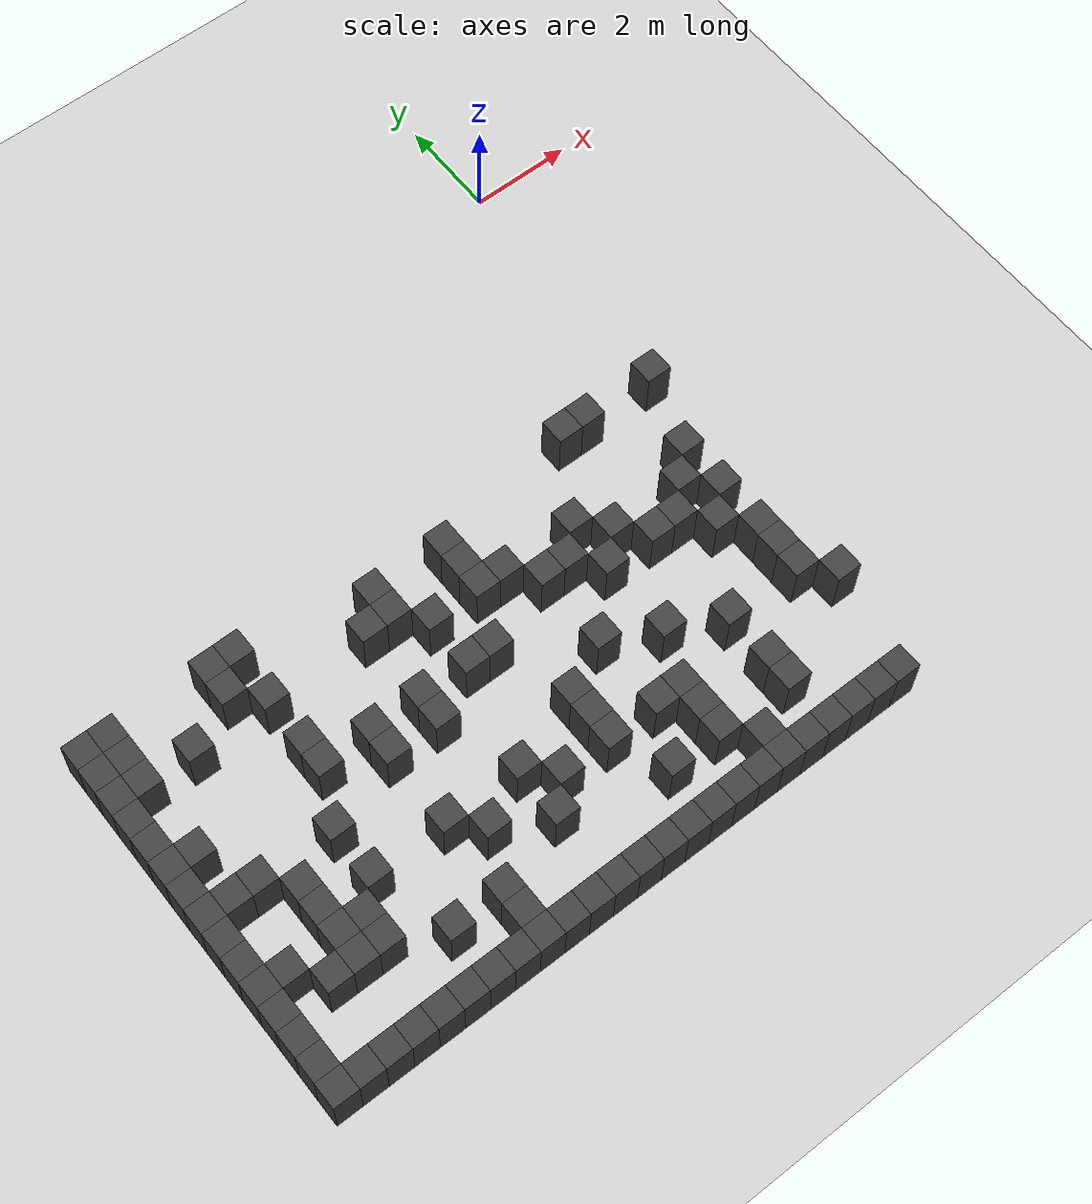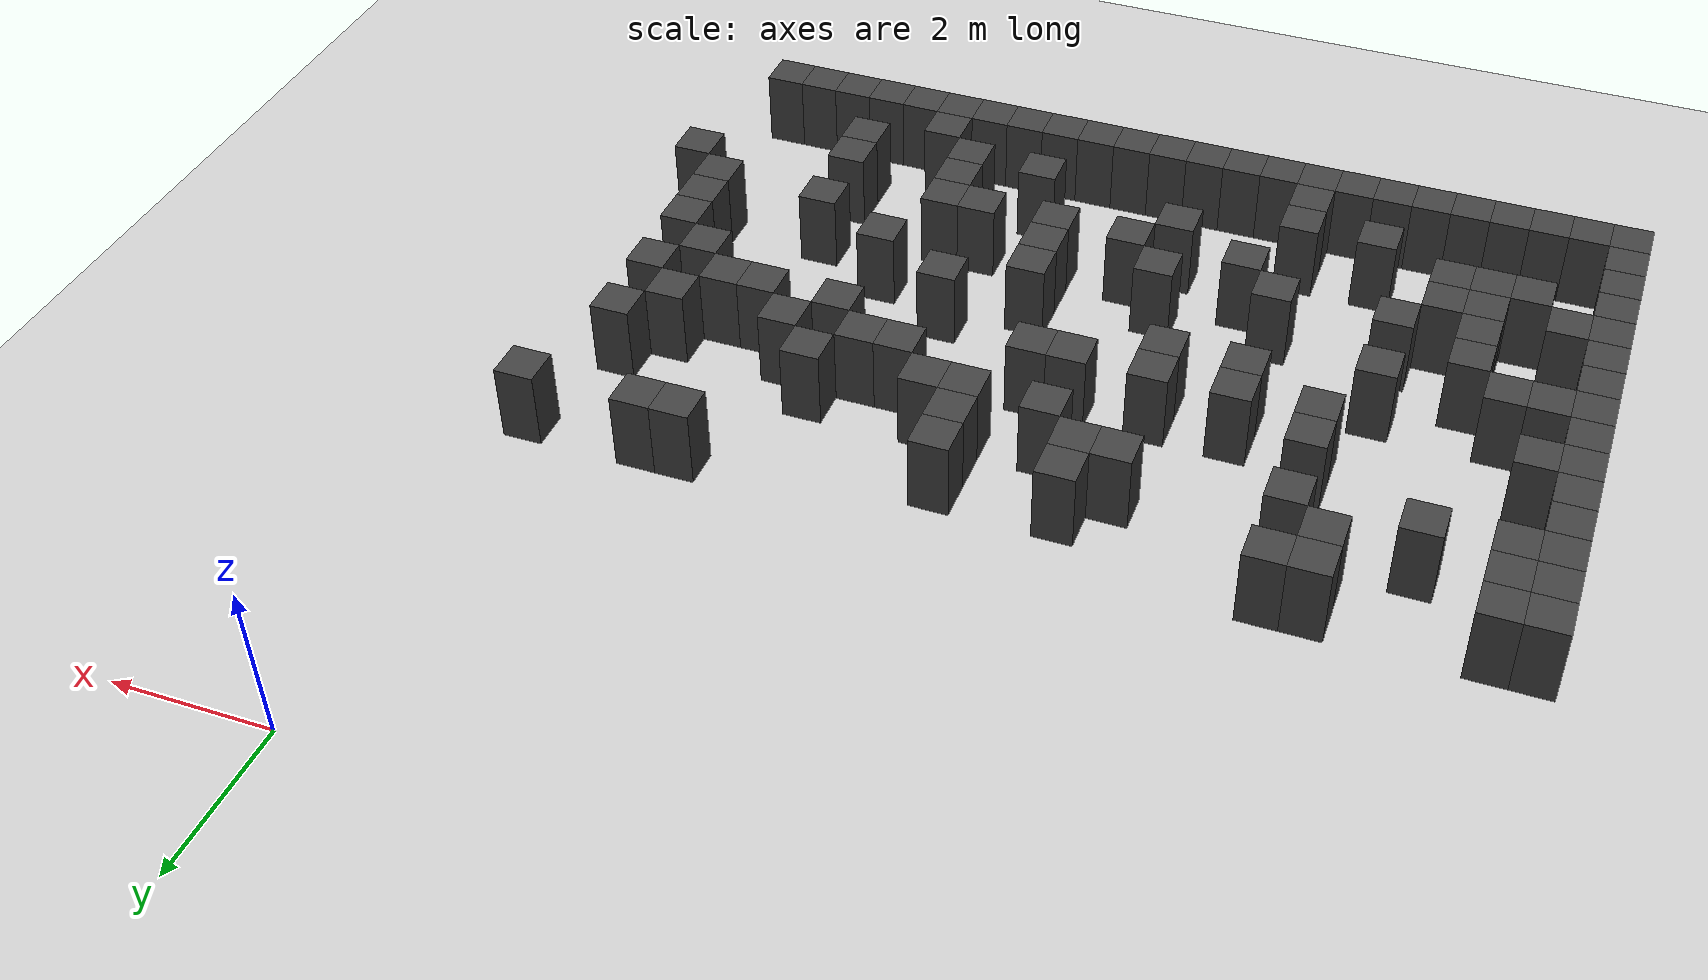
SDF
<sdf version="1.7">
 <world name="map_4492">
  <model name="ground_plane">
   <static>true</static>
   <link name="link">
    <collision name="collision">
     <geometry><plane><normal>0 0 1</normal><size>200 200</size></plane></geometry>
    </collision>
    <visual name="visual">
     <geometry><plane><normal>0 0 1</normal><size>200 200</size></plane></geometry>
     <material><ambient>0.8 0.8 0.8 1</ambient><diffuse>0.8 0.8 0.8 1</diffuse></material>
    </visual>
   </link>
  </model>
  <model name="maze_environment">
   <static>true</static>
   <link name="wall_452">
    <pose>-12.250 -5.250 0.500 0 0 0</pose>
    <collision name="col"><geometry><box><size>0.5 0.5 1.0</size></box></geometry></collision>
    <visual name="vis">
     <geometry><box><size>0.5 0.5 1.0</size></box></geometry>
     <material><ambient>0.15 0.15 0.15 1</ambient><diffuse>0.25 0.25 0.25 1</diffuse></material>
    </visual>
   </link>
   <link name="wall_453">
    <pose>-11.750 -5.250 0.500 0 0 0</pose>
    <collision name="col"><geometry><box><size>0.5 0.5 1.0</size></box></geometry></collision>
    <visual name="vis">
     <geometry><box><size>0.5 0.5 1.0</size></box></geometry>
     <material><ambient>0.15 0.15 0.15 1</ambient><diffuse>0.25 0.25 0.25 1</diffuse></material>
    </visual>
   </link>
   <link name="wall_454">
    <pose>-9.750 -5.250 0.500 0 0 0</pose>
    <collision name="col"><geometry><box><size>0.5 0.5 1.0</size></box></geometry></collision>
    <visual name="vis">
     <geometry><box><size>0.5 0.5 1.0</size></box></geometry>
     <material><ambient>0.15 0.15 0.15 1</ambient><diffuse>0.25 0.25 0.25 1</diffuse></material>
    </visual>
   </link>
   <link name="wall_455">
    <pose>-9.250 -5.250 0.500 0 0 0</pose>
    <collision name="col"><geometry><box><size>0.5 0.5 1.0</size></box></geometry></collision>
    <visual name="vis">
     <geometry><box><size>0.5 0.5 1.0</size></box></geometry>
     <material><ambient>0.15 0.15 0.15 1</ambient><diffuse>0.25 0.25 0.25 1</diffuse></material>
    </visual>
   </link>
   <link name="wall_456">
    <pose>-2.250 -5.250 0.500 0 0 0</pose>
    <collision name="col"><geometry><box><size>0.5 0.5 1.0</size></box></geometry></collision>
    <visual name="vis">
     <geometry><box><size>0.5 0.5 1.0</size></box></geometry>
     <material><ambient>0.15 0.15 0.15 1</ambient><diffuse>0.25 0.25 0.25 1</diffuse></material>
    </visual>
   </link>
   <link name="wall_457">
    <pose>-1.750 -5.250 0.500 0 0 0</pose>
    <collision name="col"><geometry><box><size>0.5 0.5 1.0</size></box></geometry></collision>
    <visual name="vis">
     <geometry><box><size>0.5 0.5 1.0</size></box></geometry>
     <material><ambient>0.15 0.15 0.15 1</ambient><diffuse>0.25 0.25 0.25 1</diffuse></material>
    </visual>
   </link>
   <link name="wall_458">
    <pose>-0.250 -5.250 0.500 0 0 0</pose>
    <collision name="col"><geometry><box><size>0.5 0.5 1.0</size></box></geometry></collision>
    <visual name="vis">
     <geometry><box><size>0.5 0.5 1.0</size></box></geometry>
     <material><ambient>0.15 0.15 0.15 1</ambient><diffuse>0.25 0.25 0.25 1</diffuse></material>
    </visual>
   </link>
   <link name="wall_463">
    <pose>-12.250 -5.750 0.500 0 0 0</pose>
    <collision name="col"><geometry><box><size>0.5 0.5 1.0</size></box></geometry></collision>
    <visual name="vis">
     <geometry><box><size>0.5 0.5 1.0</size></box></geometry>
     <material><ambient>0.15 0.15 0.15 1</ambient><diffuse>0.25 0.25 0.25 1</diffuse></material>
    </visual>
   </link>
   <link name="wall_464">
    <pose>-11.750 -5.750 0.500 0 0 0</pose>
    <collision name="col"><geometry><box><size>0.5 0.5 1.0</size></box></geometry></collision>
    <visual name="vis">
     <geometry><box><size>0.5 0.5 1.0</size></box></geometry>
     <material><ambient>0.15 0.15 0.15 1</ambient><diffuse>0.25 0.25 0.25 1</diffuse></material>
    </visual>
   </link>
   <link name="wall_465">
    <pose>-9.750 -5.750 0.500 0 0 0</pose>
    <collision name="col"><geometry><box><size>0.5 0.5 1.0</size></box></geometry></collision>
    <visual name="vis">
     <geometry><box><size>0.5 0.5 1.0</size></box></geometry>
     <material><ambient>0.15 0.15 0.15 1</ambient><diffuse>0.25 0.25 0.25 1</diffuse></material>
    </visual>
   </link>
   <link name="wall_466">
    <pose>-6.750 -5.750 0.500 0 0 0</pose>
    <collision name="col"><geometry><box><size>0.5 0.5 1.0</size></box></geometry></collision>
    <visual name="vis">
     <geometry><box><size>0.5 0.5 1.0</size></box></geometry>
     <material><ambient>0.15 0.15 0.15 1</ambient><diffuse>0.25 0.25 0.25 1</diffuse></material>
    </visual>
   </link>
   <link name="wall_467">
    <pose>-5.250 -5.750 0.500 0 0 0</pose>
    <collision name="col"><geometry><box><size>0.5 0.5 1.0</size></box></geometry></collision>
    <visual name="vis">
     <geometry><box><size>0.5 0.5 1.0</size></box></geometry>
     <material><ambient>0.15 0.15 0.15 1</ambient><diffuse>0.25 0.25 0.25 1</diffuse></material>
    </visual>
   </link>
   <link name="wall_472">
    <pose>-12.250 -6.250 0.500 0 0 0</pose>
    <collision name="col"><geometry><box><size>0.5 0.5 1.0</size></box></geometry></collision>
    <visual name="vis">
     <geometry><box><size>0.5 0.5 1.0</size></box></geometry>
     <material><ambient>0.15 0.15 0.15 1</ambient><diffuse>0.25 0.25 0.25 1</diffuse></material>
    </visual>
   </link>
   <link name="wall_473">
    <pose>-11.750 -6.250 0.500 0 0 0</pose>
    <collision name="col"><geometry><box><size>0.5 0.5 1.0</size></box></geometry></collision>
    <visual name="vis">
     <geometry><box><size>0.5 0.5 1.0</size></box></geometry>
     <material><ambient>0.15 0.15 0.15 1</ambient><diffuse>0.25 0.25 0.25 1</diffuse></material>
    </visual>
   </link>
   <link name="wall_474">
    <pose>-10.750 -6.250 0.500 0 0 0</pose>
    <collision name="col"><geometry><box><size>0.5 0.5 1.0</size></box></geometry></collision>
    <visual name="vis">
     <geometry><box><size>0.5 0.5 1.0</size></box></geometry>
     <material><ambient>0.15 0.15 0.15 1</ambient><diffuse>0.25 0.25 0.25 1</diffuse></material>
    </visual>
   </link>
   <link name="wall_475">
    <pose>-9.250 -6.250 0.500 0 0 0</pose>
    <collision name="col"><geometry><box><size>0.5 0.5 1.0</size></box></geometry></collision>
    <visual name="vis">
     <geometry><box><size>0.5 0.5 1.0</size></box></geometry>
     <material><ambient>0.15 0.15 0.15 1</ambient><diffuse>0.25 0.25 0.25 1</diffuse></material>
    </visual>
   </link>
   <link name="wall_476">
    <pose>-7.250 -6.250 0.500 0 0 0</pose>
    <collision name="col"><geometry><box><size>0.5 0.5 1.0</size></box></geometry></collision>
    <visual name="vis">
     <geometry><box><size>0.5 0.5 1.0</size></box></geometry>
     <material><ambient>0.15 0.15 0.15 1</ambient><diffuse>0.25 0.25 0.25 1</diffuse></material>
    </visual>
   </link>
   <link name="wall_477">
    <pose>-6.750 -6.250 0.500 0 0 0</pose>
    <collision name="col"><geometry><box><size>0.5 0.5 1.0</size></box></geometry></collision>
    <visual name="vis">
     <geometry><box><size>0.5 0.5 1.0</size></box></geometry>
     <material><ambient>0.15 0.15 0.15 1</ambient><diffuse>0.25 0.25 0.25 1</diffuse></material>
    </visual>
   </link>
   <link name="wall_478">
    <pose>-5.250 -6.250 0.500 0 0 0</pose>
    <collision name="col"><geometry><box><size>0.5 0.5 1.0</size></box></geometry></collision>
    <visual name="vis">
     <geometry><box><size>0.5 0.5 1.0</size></box></geometry>
     <material><ambient>0.15 0.15 0.15 1</ambient><diffuse>0.25 0.25 0.25 1</diffuse></material>
    </visual>
   </link>
   <link name="wall_483">
    <pose>-12.250 -6.750 0.500 0 0 0</pose>
    <collision name="col"><geometry><box><size>0.5 0.5 1.0</size></box></geometry></collision>
    <visual name="vis">
     <geometry><box><size>0.5 0.5 1.0</size></box></geometry>
     <material><ambient>0.15 0.15 0.15 1</ambient><diffuse>0.25 0.25 0.25 1</diffuse></material>
    </visual>
   </link>
   <link name="wall_484">
    <pose>-6.250 -6.750 0.500 0 0 0</pose>
    <collision name="col"><geometry><box><size>0.5 0.5 1.0</size></box></geometry></collision>
    <visual name="vis">
     <geometry><box><size>0.5 0.5 1.0</size></box></geometry>
     <material><ambient>0.15 0.15 0.15 1</ambient><diffuse>0.25 0.25 0.25 1</diffuse></material>
    </visual>
   </link>
   <link name="wall_485">
    <pose>-5.250 -6.750 0.500 0 0 0</pose>
    <collision name="col"><geometry><box><size>0.5 0.5 1.0</size></box></geometry></collision>
    <visual name="vis">
     <geometry><box><size>0.5 0.5 1.0</size></box></geometry>
     <material><ambient>0.15 0.15 0.15 1</ambient><diffuse>0.25 0.25 0.25 1</diffuse></material>
    </visual>
   </link>
   <link name="wall_486">
    <pose>-4.750 -6.750 0.500 0 0 0</pose>
    <collision name="col"><geometry><box><size>0.5 0.5 1.0</size></box></geometry></collision>
    <visual name="vis">
     <geometry><box><size>0.5 0.5 1.0</size></box></geometry>
     <material><ambient>0.15 0.15 0.15 1</ambient><diffuse>0.25 0.25 0.25 1</diffuse></material>
    </visual>
   </link>
   <link name="wall_487">
    <pose>-3.250 -6.750 0.500 0 0 0</pose>
    <collision name="col"><geometry><box><size>0.5 0.5 1.0</size></box></geometry></collision>
    <visual name="vis">
     <geometry><box><size>0.5 0.5 1.0</size></box></geometry>
     <material><ambient>0.15 0.15 0.15 1</ambient><diffuse>0.25 0.25 0.25 1</diffuse></material>
    </visual>
   </link>
   <link name="wall_488">
    <pose>-0.750 -6.750 0.500 0 0 0</pose>
    <collision name="col"><geometry><box><size>0.5 0.5 1.0</size></box></geometry></collision>
    <visual name="vis">
     <geometry><box><size>0.5 0.5 1.0</size></box></geometry>
     <material><ambient>0.15 0.15 0.15 1</ambient><diffuse>0.25 0.25 0.25 1</diffuse></material>
    </visual>
   </link>
   <link name="wall_496">
    <pose>-12.250 -7.250 0.500 0 0 0</pose>
    <collision name="col"><geometry><box><size>0.5 0.5 1.0</size></box></geometry></collision>
    <visual name="vis">
     <geometry><box><size>0.5 0.5 1.0</size></box></geometry>
     <material><ambient>0.15 0.15 0.15 1</ambient><diffuse>0.25 0.25 0.25 1</diffuse></material>
    </visual>
   </link>
   <link name="wall_497">
    <pose>-9.250 -7.250 0.500 0 0 0</pose>
    <collision name="col"><geometry><box><size>0.5 0.5 1.0</size></box></geometry></collision>
    <visual name="vis">
     <geometry><box><size>0.5 0.5 1.0</size></box></geometry>
     <material><ambient>0.15 0.15 0.15 1</ambient><diffuse>0.25 0.25 0.25 1</diffuse></material>
    </visual>
   </link>
   <link name="wall_498">
    <pose>-4.250 -7.250 0.500 0 0 0</pose>
    <collision name="col"><geometry><box><size>0.5 0.5 1.0</size></box></geometry></collision>
    <visual name="vis">
     <geometry><box><size>0.5 0.5 1.0</size></box></geometry>
     <material><ambient>0.15 0.15 0.15 1</ambient><diffuse>0.25 0.25 0.25 1</diffuse></material>
    </visual>
   </link>
   <link name="wall_499">
    <pose>-3.750 -7.250 0.500 0 0 0</pose>
    <collision name="col"><geometry><box><size>0.5 0.5 1.0</size></box></geometry></collision>
    <visual name="vis">
     <geometry><box><size>0.5 0.5 1.0</size></box></geometry>
     <material><ambient>0.15 0.15 0.15 1</ambient><diffuse>0.25 0.25 0.25 1</diffuse></material>
    </visual>
   </link>
   <link name="wall_500">
    <pose>-2.750 -7.250 0.500 0 0 0</pose>
    <collision name="col"><geometry><box><size>0.5 0.5 1.0</size></box></geometry></collision>
    <visual name="vis">
     <geometry><box><size>0.5 0.5 1.0</size></box></geometry>
     <material><ambient>0.15 0.15 0.15 1</ambient><diffuse>0.25 0.25 0.25 1</diffuse></material>
    </visual>
   </link>
   <link name="wall_501">
    <pose>-1.250 -7.250 0.500 0 0 0</pose>
    <collision name="col"><geometry><box><size>0.5 0.5 1.0</size></box></geometry></collision>
    <visual name="vis">
     <geometry><box><size>0.5 0.5 1.0</size></box></geometry>
     <material><ambient>0.15 0.15 0.15 1</ambient><diffuse>0.25 0.25 0.25 1</diffuse></material>
    </visual>
   </link>
   <link name="wall_510">
    <pose>-12.250 -7.750 0.500 0 0 0</pose>
    <collision name="col"><geometry><box><size>0.5 0.5 1.0</size></box></geometry></collision>
    <visual name="vis">
     <geometry><box><size>0.5 0.5 1.0</size></box></geometry>
     <material><ambient>0.15 0.15 0.15 1</ambient><diffuse>0.25 0.25 0.25 1</diffuse></material>
    </visual>
   </link>
   <link name="wall_511">
    <pose>-11.750 -7.750 0.500 0 0 0</pose>
    <collision name="col"><geometry><box><size>0.5 0.5 1.0</size></box></geometry></collision>
    <visual name="vis">
     <geometry><box><size>0.5 0.5 1.0</size></box></geometry>
     <material><ambient>0.15 0.15 0.15 1</ambient><diffuse>0.25 0.25 0.25 1</diffuse></material>
    </visual>
   </link>
   <link name="wall_512">
    <pose>-9.250 -7.750 0.500 0 0 0</pose>
    <collision name="col"><geometry><box><size>0.5 0.5 1.0</size></box></geometry></collision>
    <visual name="vis">
     <geometry><box><size>0.5 0.5 1.0</size></box></geometry>
     <material><ambient>0.15 0.15 0.15 1</ambient><diffuse>0.25 0.25 0.25 1</diffuse></material>
    </visual>
   </link>
   <link name="wall_513">
    <pose>-8.250 -7.750 0.500 0 0 0</pose>
    <collision name="col"><geometry><box><size>0.5 0.5 1.0</size></box></geometry></collision>
    <visual name="vis">
     <geometry><box><size>0.5 0.5 1.0</size></box></geometry>
     <material><ambient>0.15 0.15 0.15 1</ambient><diffuse>0.25 0.25 0.25 1</diffuse></material>
    </visual>
   </link>
   <link name="wall_514">
    <pose>-7.250 -7.750 0.500 0 0 0</pose>
    <collision name="col"><geometry><box><size>0.5 0.5 1.0</size></box></geometry></collision>
    <visual name="vis">
     <geometry><box><size>0.5 0.5 1.0</size></box></geometry>
     <material><ambient>0.15 0.15 0.15 1</ambient><diffuse>0.25 0.25 0.25 1</diffuse></material>
    </visual>
   </link>
   <link name="wall_515">
    <pose>-6.250 -7.750 0.500 0 0 0</pose>
    <collision name="col"><geometry><box><size>0.5 0.5 1.0</size></box></geometry></collision>
    <visual name="vis">
     <geometry><box><size>0.5 0.5 1.0</size></box></geometry>
     <material><ambient>0.15 0.15 0.15 1</ambient><diffuse>0.25 0.25 0.25 1</diffuse></material>
    </visual>
   </link>
   <link name="wall_516">
    <pose>-5.750 -7.750 0.500 0 0 0</pose>
    <collision name="col"><geometry><box><size>0.5 0.5 1.0</size></box></geometry></collision>
    <visual name="vis">
     <geometry><box><size>0.5 0.5 1.0</size></box></geometry>
     <material><ambient>0.15 0.15 0.15 1</ambient><diffuse>0.25 0.25 0.25 1</diffuse></material>
    </visual>
   </link>
   <link name="wall_517">
    <pose>-3.250 -7.750 0.500 0 0 0</pose>
    <collision name="col"><geometry><box><size>0.5 0.5 1.0</size></box></geometry></collision>
    <visual name="vis">
     <geometry><box><size>0.5 0.5 1.0</size></box></geometry>
     <material><ambient>0.15 0.15 0.15 1</ambient><diffuse>0.25 0.25 0.25 1</diffuse></material>
    </visual>
   </link>
   <link name="wall_518">
    <pose>-2.250 -7.750 0.500 0 0 0</pose>
    <collision name="col"><geometry><box><size>0.5 0.5 1.0</size></box></geometry></collision>
    <visual name="vis">
     <geometry><box><size>0.5 0.5 1.0</size></box></geometry>
     <material><ambient>0.15 0.15 0.15 1</ambient><diffuse>0.25 0.25 0.25 1</diffuse></material>
    </visual>
   </link>
   <link name="wall_519">
    <pose>-1.750 -7.750 0.500 0 0 0</pose>
    <collision name="col"><geometry><box><size>0.5 0.5 1.0</size></box></geometry></collision>
    <visual name="vis">
     <geometry><box><size>0.5 0.5 1.0</size></box></geometry>
     <material><ambient>0.15 0.15 0.15 1</ambient><diffuse>0.25 0.25 0.25 1</diffuse></material>
    </visual>
   </link>
   <link name="wall_520">
    <pose>-0.750 -7.750 0.500 0 0 0</pose>
    <collision name="col"><geometry><box><size>0.5 0.5 1.0</size></box></geometry></collision>
    <visual name="vis">
     <geometry><box><size>0.5 0.5 1.0</size></box></geometry>
     <material><ambient>0.15 0.15 0.15 1</ambient><diffuse>0.25 0.25 0.25 1</diffuse></material>
    </visual>
   </link>
   <link name="wall_531">
    <pose>-12.250 -8.250 0.500 0 0 0</pose>
    <collision name="col"><geometry><box><size>0.5 0.5 1.0</size></box></geometry></collision>
    <visual name="vis">
     <geometry><box><size>0.5 0.5 1.0</size></box></geometry>
     <material><ambient>0.15 0.15 0.15 1</ambient><diffuse>0.25 0.25 0.25 1</diffuse></material>
    </visual>
   </link>
   <link name="wall_532">
    <pose>-8.250 -8.250 0.500 0 0 0</pose>
    <collision name="col"><geometry><box><size>0.5 0.5 1.0</size></box></geometry></collision>
    <visual name="vis">
     <geometry><box><size>0.5 0.5 1.0</size></box></geometry>
     <material><ambient>0.15 0.15 0.15 1</ambient><diffuse>0.25 0.25 0.25 1</diffuse></material>
    </visual>
   </link>
   <link name="wall_533">
    <pose>-7.250 -8.250 0.500 0 0 0</pose>
    <collision name="col"><geometry><box><size>0.5 0.5 1.0</size></box></geometry></collision>
    <visual name="vis">
     <geometry><box><size>0.5 0.5 1.0</size></box></geometry>
     <material><ambient>0.15 0.15 0.15 1</ambient><diffuse>0.25 0.25 0.25 1</diffuse></material>
    </visual>
   </link>
   <link name="wall_534">
    <pose>-1.250 -8.250 0.500 0 0 0</pose>
    <collision name="col"><geometry><box><size>0.5 0.5 1.0</size></box></geometry></collision>
    <visual name="vis">
     <geometry><box><size>0.5 0.5 1.0</size></box></geometry>
     <material><ambient>0.15 0.15 0.15 1</ambient><diffuse>0.25 0.25 0.25 1</diffuse></material>
    </visual>
   </link>
   <link name="wall_539">
    <pose>-12.250 -8.750 0.500 0 0 0</pose>
    <collision name="col"><geometry><box><size>0.5 0.5 1.0</size></box></geometry></collision>
    <visual name="vis">
     <geometry><box><size>0.5 0.5 1.0</size></box></geometry>
     <material><ambient>0.15 0.15 0.15 1</ambient><diffuse>0.25 0.25 0.25 1</diffuse></material>
    </visual>
   </link>
   <link name="wall_540">
    <pose>-11.750 -8.750 0.500 0 0 0</pose>
    <collision name="col"><geometry><box><size>0.5 0.5 1.0</size></box></geometry></collision>
    <visual name="vis">
     <geometry><box><size>0.5 0.5 1.0</size></box></geometry>
     <material><ambient>0.15 0.15 0.15 1</ambient><diffuse>0.25 0.25 0.25 1</diffuse></material>
    </visual>
   </link>
   <link name="wall_541">
    <pose>-11.250 -8.750 0.500 0 0 0</pose>
    <collision name="col"><geometry><box><size>0.5 0.5 1.0</size></box></geometry></collision>
    <visual name="vis">
     <geometry><box><size>0.5 0.5 1.0</size></box></geometry>
     <material><ambient>0.15 0.15 0.15 1</ambient><diffuse>0.25 0.25 0.25 1</diffuse></material>
    </visual>
   </link>
   <link name="wall_542">
    <pose>-9.750 -8.750 0.500 0 0 0</pose>
    <collision name="col"><geometry><box><size>0.5 0.5 1.0</size></box></geometry></collision>
    <visual name="vis">
     <geometry><box><size>0.5 0.5 1.0</size></box></geometry>
     <material><ambient>0.15 0.15 0.15 1</ambient><diffuse>0.25 0.25 0.25 1</diffuse></material>
    </visual>
   </link>
   <link name="wall_543">
    <pose>-4.250 -8.750 0.500 0 0 0</pose>
    <collision name="col"><geometry><box><size>0.5 0.5 1.0</size></box></geometry></collision>
    <visual name="vis">
     <geometry><box><size>0.5 0.5 1.0</size></box></geometry>
     <material><ambient>0.15 0.15 0.15 1</ambient><diffuse>0.25 0.25 0.25 1</diffuse></material>
    </visual>
   </link>
   <link name="wall_544">
    <pose>-0.750 -8.750 0.500 0 0 0</pose>
    <collision name="col"><geometry><box><size>0.5 0.5 1.0</size></box></geometry></collision>
    <visual name="vis">
     <geometry><box><size>0.5 0.5 1.0</size></box></geometry>
     <material><ambient>0.15 0.15 0.15 1</ambient><diffuse>0.25 0.25 0.25 1</diffuse></material>
    </visual>
   </link>
   <link name="wall_552">
    <pose>-12.250 -9.250 0.500 0 0 0</pose>
    <collision name="col"><geometry><box><size>0.5 0.5 1.0</size></box></geometry></collision>
    <visual name="vis">
     <geometry><box><size>0.5 0.5 1.0</size></box></geometry>
     <material><ambient>0.15 0.15 0.15 1</ambient><diffuse>0.25 0.25 0.25 1</diffuse></material>
    </visual>
   </link>
   <link name="wall_553">
    <pose>-10.750 -9.250 0.500 0 0 0</pose>
    <collision name="col"><geometry><box><size>0.5 0.5 1.0</size></box></geometry></collision>
    <visual name="vis">
     <geometry><box><size>0.5 0.5 1.0</size></box></geometry>
     <material><ambient>0.15 0.15 0.15 1</ambient><diffuse>0.25 0.25 0.25 1</diffuse></material>
    </visual>
   </link>
   <link name="wall_554">
    <pose>-5.250 -9.250 0.500 0 0 0</pose>
    <collision name="col"><geometry><box><size>0.5 0.5 1.0</size></box></geometry></collision>
    <visual name="vis">
     <geometry><box><size>0.5 0.5 1.0</size></box></geometry>
     <material><ambient>0.15 0.15 0.15 1</ambient><diffuse>0.25 0.25 0.25 1</diffuse></material>
    </visual>
   </link>
   <link name="wall_555">
    <pose>-3.250 -9.250 0.500 0 0 0</pose>
    <collision name="col"><geometry><box><size>0.5 0.5 1.0</size></box></geometry></collision>
    <visual name="vis">
     <geometry><box><size>0.5 0.5 1.0</size></box></geometry>
     <material><ambient>0.15 0.15 0.15 1</ambient><diffuse>0.25 0.25 0.25 1</diffuse></material>
    </visual>
   </link>
   <link name="wall_556">
    <pose>-0.750 -9.250 0.500 0 0 0</pose>
    <collision name="col"><geometry><box><size>0.5 0.5 1.0</size></box></geometry></collision>
    <visual name="vis">
     <geometry><box><size>0.5 0.5 1.0</size></box></geometry>
     <material><ambient>0.15 0.15 0.15 1</ambient><diffuse>0.25 0.25 0.25 1</diffuse></material>
    </visual>
   </link>
   <link name="wall_562">
    <pose>-12.250 -9.750 0.500 0 0 0</pose>
    <collision name="col"><geometry><box><size>0.5 0.5 1.0</size></box></geometry></collision>
    <visual name="vis">
     <geometry><box><size>0.5 0.5 1.0</size></box></geometry>
     <material><ambient>0.15 0.15 0.15 1</ambient><diffuse>0.25 0.25 0.25 1</diffuse></material>
    </visual>
   </link>
   <link name="wall_563">
    <pose>-10.750 -9.750 0.500 0 0 0</pose>
    <collision name="col"><geometry><box><size>0.5 0.5 1.0</size></box></geometry></collision>
    <visual name="vis">
     <geometry><box><size>0.5 0.5 1.0</size></box></geometry>
     <material><ambient>0.15 0.15 0.15 1</ambient><diffuse>0.25 0.25 0.25 1</diffuse></material>
    </visual>
   </link>
   <link name="wall_564">
    <pose>-9.750 -9.750 0.500 0 0 0</pose>
    <collision name="col"><geometry><box><size>0.5 0.5 1.0</size></box></geometry></collision>
    <visual name="vis">
     <geometry><box><size>0.5 0.5 1.0</size></box></geometry>
     <material><ambient>0.15 0.15 0.15 1</ambient><diffuse>0.25 0.25 0.25 1</diffuse></material>
    </visual>
   </link>
   <link name="wall_565">
    <pose>-8.250 -9.750 0.500 0 0 0</pose>
    <collision name="col"><geometry><box><size>0.5 0.5 1.0</size></box></geometry></collision>
    <visual name="vis">
     <geometry><box><size>0.5 0.5 1.0</size></box></geometry>
     <material><ambient>0.15 0.15 0.15 1</ambient><diffuse>0.25 0.25 0.25 1</diffuse></material>
    </visual>
   </link>
   <link name="wall_566">
    <pose>-6.750 -9.750 0.500 0 0 0</pose>
    <collision name="col"><geometry><box><size>0.5 0.5 1.0</size></box></geometry></collision>
    <visual name="vis">
     <geometry><box><size>0.5 0.5 1.0</size></box></geometry>
     <material><ambient>0.15 0.15 0.15 1</ambient><diffuse>0.25 0.25 0.25 1</diffuse></material>
    </visual>
   </link>
   <link name="wall_567">
    <pose>-5.250 -9.750 0.500 0 0 0</pose>
    <collision name="col"><geometry><box><size>0.5 0.5 1.0</size></box></geometry></collision>
    <visual name="vis">
     <geometry><box><size>0.5 0.5 1.0</size></box></geometry>
     <material><ambient>0.15 0.15 0.15 1</ambient><diffuse>0.25 0.25 0.25 1</diffuse></material>
    </visual>
   </link>
   <link name="wall_568">
    <pose>-2.250 -9.750 0.500 0 0 0</pose>
    <collision name="col"><geometry><box><size>0.5 0.5 1.0</size></box></geometry></collision>
    <visual name="vis">
     <geometry><box><size>0.5 0.5 1.0</size></box></geometry>
     <material><ambient>0.15 0.15 0.15 1</ambient><diffuse>0.25 0.25 0.25 1</diffuse></material>
    </visual>
   </link>
   <link name="wall_569">
    <pose>-0.750 -9.750 0.500 0 0 0</pose>
    <collision name="col"><geometry><box><size>0.5 0.5 1.0</size></box></geometry></collision>
    <visual name="vis">
     <geometry><box><size>0.5 0.5 1.0</size></box></geometry>
     <material><ambient>0.15 0.15 0.15 1</ambient><diffuse>0.25 0.25 0.25 1</diffuse></material>
    </visual>
   </link>
   <link name="wall_581">
    <pose>-12.250 -10.250 0.500 0 0 0</pose>
    <collision name="col"><geometry><box><size>0.5 0.5 1.0</size></box></geometry></collision>
    <visual name="vis">
     <geometry><box><size>0.5 0.5 1.0</size></box></geometry>
     <material><ambient>0.15 0.15 0.15 1</ambient><diffuse>0.25 0.25 0.25 1</diffuse></material>
    </visual>
   </link>
   <link name="wall_582">
    <pose>-11.750 -10.250 0.500 0 0 0</pose>
    <collision name="col"><geometry><box><size>0.5 0.5 1.0</size></box></geometry></collision>
    <visual name="vis">
     <geometry><box><size>0.5 0.5 1.0</size></box></geometry>
     <material><ambient>0.15 0.15 0.15 1</ambient><diffuse>0.25 0.25 0.25 1</diffuse></material>
    </visual>
   </link>
   <link name="wall_583">
    <pose>-10.750 -10.250 0.500 0 0 0</pose>
    <collision name="col"><geometry><box><size>0.5 0.5 1.0</size></box></geometry></collision>
    <visual name="vis">
     <geometry><box><size>0.5 0.5 1.0</size></box></geometry>
     <material><ambient>0.15 0.15 0.15 1</ambient><diffuse>0.25 0.25 0.25 1</diffuse></material>
    </visual>
   </link>
   <link name="wall_584">
    <pose>-10.250 -10.250 0.500 0 0 0</pose>
    <collision name="col"><geometry><box><size>0.5 0.5 1.0</size></box></geometry></collision>
    <visual name="vis">
     <geometry><box><size>0.5 0.5 1.0</size></box></geometry>
     <material><ambient>0.15 0.15 0.15 1</ambient><diffuse>0.25 0.25 0.25 1</diffuse></material>
    </visual>
   </link>
   <link name="wall_585">
    <pose>-7.750 -10.250 0.500 0 0 0</pose>
    <collision name="col"><geometry><box><size>0.5 0.5 1.0</size></box></geometry></collision>
    <visual name="vis">
     <geometry><box><size>0.5 0.5 1.0</size></box></geometry>
     <material><ambient>0.15 0.15 0.15 1</ambient><diffuse>0.25 0.25 0.25 1</diffuse></material>
    </visual>
   </link>
   <link name="wall_586">
    <pose>-6.250 -10.250 0.500 0 0 0</pose>
    <collision name="col"><geometry><box><size>0.5 0.5 1.0</size></box></geometry></collision>
    <visual name="vis">
     <geometry><box><size>0.5 0.5 1.0</size></box></geometry>
     <material><ambient>0.15 0.15 0.15 1</ambient><diffuse>0.25 0.25 0.25 1</diffuse></material>
    </visual>
   </link>
   <link name="wall_587">
    <pose>-5.250 -10.250 0.500 0 0 0</pose>
    <collision name="col"><geometry><box><size>0.5 0.5 1.0</size></box></geometry></collision>
    <visual name="vis">
     <geometry><box><size>0.5 0.5 1.0</size></box></geometry>
     <material><ambient>0.15 0.15 0.15 1</ambient><diffuse>0.25 0.25 0.25 1</diffuse></material>
    </visual>
   </link>
   <link name="wall_588">
    <pose>-4.250 -10.250 0.500 0 0 0</pose>
    <collision name="col"><geometry><box><size>0.5 0.5 1.0</size></box></geometry></collision>
    <visual name="vis">
     <geometry><box><size>0.5 0.5 1.0</size></box></geometry>
     <material><ambient>0.15 0.15 0.15 1</ambient><diffuse>0.25 0.25 0.25 1</diffuse></material>
    </visual>
   </link>
   <link name="wall_589">
    <pose>-3.750 -10.250 0.500 0 0 0</pose>
    <collision name="col"><geometry><box><size>0.5 0.5 1.0</size></box></geometry></collision>
    <visual name="vis">
     <geometry><box><size>0.5 0.5 1.0</size></box></geometry>
     <material><ambient>0.15 0.15 0.15 1</ambient><diffuse>0.25 0.25 0.25 1</diffuse></material>
    </visual>
   </link>
   <link name="wall_590">
    <pose>-0.250 -10.250 0.500 0 0 0</pose>
    <collision name="col"><geometry><box><size>0.5 0.5 1.0</size></box></geometry></collision>
    <visual name="vis">
     <geometry><box><size>0.5 0.5 1.0</size></box></geometry>
     <material><ambient>0.15 0.15 0.15 1</ambient><diffuse>0.25 0.25 0.25 1</diffuse></material>
    </visual>
   </link>
   <link name="wall_601">
    <pose>-12.250 -10.750 0.500 0 0 0</pose>
    <collision name="col"><geometry><box><size>0.5 0.5 1.0</size></box></geometry></collision>
    <visual name="vis">
     <geometry><box><size>0.5 0.5 1.0</size></box></geometry>
     <material><ambient>0.15 0.15 0.15 1</ambient><diffuse>0.25 0.25 0.25 1</diffuse></material>
    </visual>
   </link>
   <link name="wall_602">
    <pose>-11.250 -10.750 0.500 0 0 0</pose>
    <collision name="col"><geometry><box><size>0.5 0.5 1.0</size></box></geometry></collision>
    <visual name="vis">
     <geometry><box><size>0.5 0.5 1.0</size></box></geometry>
     <material><ambient>0.15 0.15 0.15 1</ambient><diffuse>0.25 0.25 0.25 1</diffuse></material>
    </visual>
   </link>
   <link name="wall_603">
    <pose>-10.750 -10.750 0.500 0 0 0</pose>
    <collision name="col"><geometry><box><size>0.5 0.5 1.0</size></box></geometry></collision>
    <visual name="vis">
     <geometry><box><size>0.5 0.5 1.0</size></box></geometry>
     <material><ambient>0.15 0.15 0.15 1</ambient><diffuse>0.25 0.25 0.25 1</diffuse></material>
    </visual>
   </link>
   <link name="wall_604">
    <pose>-10.250 -10.750 0.500 0 0 0</pose>
    <collision name="col"><geometry><box><size>0.5 0.5 1.0</size></box></geometry></collision>
    <visual name="vis">
     <geometry><box><size>0.5 0.5 1.0</size></box></geometry>
     <material><ambient>0.15 0.15 0.15 1</ambient><diffuse>0.25 0.25 0.25 1</diffuse></material>
    </visual>
   </link>
   <link name="wall_605">
    <pose>-6.750 -10.750 0.500 0 0 0</pose>
    <collision name="col"><geometry><box><size>0.5 0.5 1.0</size></box></geometry></collision>
    <visual name="vis">
     <geometry><box><size>0.5 0.5 1.0</size></box></geometry>
     <material><ambient>0.15 0.15 0.15 1</ambient><diffuse>0.25 0.25 0.25 1</diffuse></material>
    </visual>
   </link>
   <link name="wall_606">
    <pose>-3.750 -10.750 0.500 0 0 0</pose>
    <collision name="col"><geometry><box><size>0.5 0.5 1.0</size></box></geometry></collision>
    <visual name="vis">
     <geometry><box><size>0.5 0.5 1.0</size></box></geometry>
     <material><ambient>0.15 0.15 0.15 1</ambient><diffuse>0.25 0.25 0.25 1</diffuse></material>
    </visual>
   </link>
   <link name="wall_607">
    <pose>-2.250 -10.750 0.500 0 0 0</pose>
    <collision name="col"><geometry><box><size>0.5 0.5 1.0</size></box></geometry></collision>
    <visual name="vis">
     <geometry><box><size>0.5 0.5 1.0</size></box></geometry>
     <material><ambient>0.15 0.15 0.15 1</ambient><diffuse>0.25 0.25 0.25 1</diffuse></material>
    </visual>
   </link>
   <link name="wall_618">
    <pose>-12.250 -11.250 0.500 0 0 0</pose>
    <collision name="col"><geometry><box><size>0.5 0.5 1.0</size></box></geometry></collision>
    <visual name="vis">
     <geometry><box><size>0.5 0.5 1.0</size></box></geometry>
     <material><ambient>0.15 0.15 0.15 1</ambient><diffuse>0.25 0.25 0.25 1</diffuse></material>
    </visual>
   </link>
   <link name="wall_619">
    <pose>-9.250 -11.250 0.500 0 0 0</pose>
    <collision name="col"><geometry><box><size>0.5 0.5 1.0</size></box></geometry></collision>
    <visual name="vis">
     <geometry><box><size>0.5 0.5 1.0</size></box></geometry>
     <material><ambient>0.15 0.15 0.15 1</ambient><diffuse>0.25 0.25 0.25 1</diffuse></material>
    </visual>
   </link>
   <link name="wall_620">
    <pose>-8.250 -11.250 0.500 0 0 0</pose>
    <collision name="col"><geometry><box><size>0.5 0.5 1.0</size></box></geometry></collision>
    <visual name="vis">
     <geometry><box><size>0.5 0.5 1.0</size></box></geometry>
     <material><ambient>0.15 0.15 0.15 1</ambient><diffuse>0.25 0.25 0.25 1</diffuse></material>
    </visual>
   </link>
   <link name="wall_621">
    <pose>-4.750 -11.250 0.500 0 0 0</pose>
    <collision name="col"><geometry><box><size>0.5 0.5 1.0</size></box></geometry></collision>
    <visual name="vis">
     <geometry><box><size>0.5 0.5 1.0</size></box></geometry>
     <material><ambient>0.15 0.15 0.15 1</ambient><diffuse>0.25 0.25 0.25 1</diffuse></material>
    </visual>
   </link>
   <link name="wall_622">
    <pose>-3.750 -11.250 0.500 0 0 0</pose>
    <collision name="col"><geometry><box><size>0.5 0.5 1.0</size></box></geometry></collision>
    <visual name="vis">
     <geometry><box><size>0.5 0.5 1.0</size></box></geometry>
     <material><ambient>0.15 0.15 0.15 1</ambient><diffuse>0.25 0.25 0.25 1</diffuse></material>
    </visual>
   </link>
   <link name="wall_623">
    <pose>-2.250 -11.250 0.500 0 0 0</pose>
    <collision name="col"><geometry><box><size>0.5 0.5 1.0</size></box></geometry></collision>
    <visual name="vis">
     <geometry><box><size>0.5 0.5 1.0</size></box></geometry>
     <material><ambient>0.15 0.15 0.15 1</ambient><diffuse>0.25 0.25 0.25 1</diffuse></material>
    </visual>
   </link>
   <link name="wall_630">
    <pose>-12.250 -11.750 0.500 0 0 0</pose>
    <collision name="col"><geometry><box><size>0.5 0.5 1.0</size></box></geometry></collision>
    <visual name="vis">
     <geometry><box><size>0.5 0.5 1.0</size></box></geometry>
     <material><ambient>0.15 0.15 0.15 1</ambient><diffuse>0.25 0.25 0.25 1</diffuse></material>
    </visual>
   </link>
   <link name="wall_631">
    <pose>-8.250 -11.750 0.500 0 0 0</pose>
    <collision name="col"><geometry><box><size>0.5 0.5 1.0</size></box></geometry></collision>
    <visual name="vis">
     <geometry><box><size>0.5 0.5 1.0</size></box></geometry>
     <material><ambient>0.15 0.15 0.15 1</ambient><diffuse>0.25 0.25 0.25 1</diffuse></material>
    </visual>
   </link>
   <link name="wall_632">
    <pose>-3.250 -11.750 0.500 0 0 0</pose>
    <collision name="col"><geometry><box><size>0.5 0.5 1.0</size></box></geometry></collision>
    <visual name="vis">
     <geometry><box><size>0.5 0.5 1.0</size></box></geometry>
     <material><ambient>0.15 0.15 0.15 1</ambient><diffuse>0.25 0.25 0.25 1</diffuse></material>
    </visual>
   </link>
   <link name="wall_641">
    <pose>-12.250 -12.250 0.500 0 0 0</pose>
    <collision name="col"><geometry><box><size>0.5 0.5 1.0</size></box></geometry></collision>
    <visual name="vis">
     <geometry><box><size>0.5 0.5 1.0</size></box></geometry>
     <material><ambient>0.15 0.15 0.15 1</ambient><diffuse>0.25 0.25 0.25 1</diffuse></material>
    </visual>
   </link>
   <link name="wall_642">
    <pose>-11.750 -12.250 0.500 0 0 0</pose>
    <collision name="col"><geometry><box><size>0.5 0.5 1.0</size></box></geometry></collision>
    <visual name="vis">
     <geometry><box><size>0.5 0.5 1.0</size></box></geometry>
     <material><ambient>0.15 0.15 0.15 1</ambient><diffuse>0.25 0.25 0.25 1</diffuse></material>
    </visual>
   </link>
   <link name="wall_643">
    <pose>-11.250 -12.250 0.500 0 0 0</pose>
    <collision name="col"><geometry><box><size>0.5 0.5 1.0</size></box></geometry></collision>
    <visual name="vis">
     <geometry><box><size>0.5 0.5 1.0</size></box></geometry>
     <material><ambient>0.15 0.15 0.15 1</ambient><diffuse>0.25 0.25 0.25 1</diffuse></material>
    </visual>
   </link>
   <link name="wall_644">
    <pose>-10.750 -12.250 0.500 0 0 0</pose>
    <collision name="col"><geometry><box><size>0.5 0.5 1.0</size></box></geometry></collision>
    <visual name="vis">
     <geometry><box><size>0.5 0.5 1.0</size></box></geometry>
     <material><ambient>0.15 0.15 0.15 1</ambient><diffuse>0.25 0.25 0.25 1</diffuse></material>
    </visual>
   </link>
   <link name="wall_645">
    <pose>-10.250 -12.250 0.500 0 0 0</pose>
    <collision name="col"><geometry><box><size>0.5 0.5 1.0</size></box></geometry></collision>
    <visual name="vis">
     <geometry><box><size>0.5 0.5 1.0</size></box></geometry>
     <material><ambient>0.15 0.15 0.15 1</ambient><diffuse>0.25 0.25 0.25 1</diffuse></material>
    </visual>
   </link>
   <link name="wall_646">
    <pose>-9.750 -12.250 0.500 0 0 0</pose>
    <collision name="col"><geometry><box><size>0.5 0.5 1.0</size></box></geometry></collision>
    <visual name="vis">
     <geometry><box><size>0.5 0.5 1.0</size></box></geometry>
     <material><ambient>0.15 0.15 0.15 1</ambient><diffuse>0.25 0.25 0.25 1</diffuse></material>
    </visual>
   </link>
   <link name="wall_647">
    <pose>-9.250 -12.250 0.500 0 0 0</pose>
    <collision name="col"><geometry><box><size>0.5 0.5 1.0</size></box></geometry></collision>
    <visual name="vis">
     <geometry><box><size>0.5 0.5 1.0</size></box></geometry>
     <material><ambient>0.15 0.15 0.15 1</ambient><diffuse>0.25 0.25 0.25 1</diffuse></material>
    </visual>
   </link>
   <link name="wall_648">
    <pose>-8.750 -12.250 0.500 0 0 0</pose>
    <collision name="col"><geometry><box><size>0.5 0.5 1.0</size></box></geometry></collision>
    <visual name="vis">
     <geometry><box><size>0.5 0.5 1.0</size></box></geometry>
     <material><ambient>0.15 0.15 0.15 1</ambient><diffuse>0.25 0.25 0.25 1</diffuse></material>
    </visual>
   </link>
   <link name="wall_649">
    <pose>-8.250 -12.250 0.500 0 0 0</pose>
    <collision name="col"><geometry><box><size>0.5 0.5 1.0</size></box></geometry></collision>
    <visual name="vis">
     <geometry><box><size>0.5 0.5 1.0</size></box></geometry>
     <material><ambient>0.15 0.15 0.15 1</ambient><diffuse>0.25 0.25 0.25 1</diffuse></material>
    </visual>
   </link>
   <link name="wall_650">
    <pose>-7.750 -12.250 0.500 0 0 0</pose>
    <collision name="col"><geometry><box><size>0.5 0.5 1.0</size></box></geometry></collision>
    <visual name="vis">
     <geometry><box><size>0.5 0.5 1.0</size></box></geometry>
     <material><ambient>0.15 0.15 0.15 1</ambient><diffuse>0.25 0.25 0.25 1</diffuse></material>
    </visual>
   </link>
   <link name="wall_651">
    <pose>-7.250 -12.250 0.500 0 0 0</pose>
    <collision name="col"><geometry><box><size>0.5 0.5 1.0</size></box></geometry></collision>
    <visual name="vis">
     <geometry><box><size>0.5 0.5 1.0</size></box></geometry>
     <material><ambient>0.15 0.15 0.15 1</ambient><diffuse>0.25 0.25 0.25 1</diffuse></material>
    </visual>
   </link>
   <link name="wall_652">
    <pose>-6.750 -12.250 0.500 0 0 0</pose>
    <collision name="col"><geometry><box><size>0.5 0.5 1.0</size></box></geometry></collision>
    <visual name="vis">
     <geometry><box><size>0.5 0.5 1.0</size></box></geometry>
     <material><ambient>0.15 0.15 0.15 1</ambient><diffuse>0.25 0.25 0.25 1</diffuse></material>
    </visual>
   </link>
   <link name="wall_653">
    <pose>-6.250 -12.250 0.500 0 0 0</pose>
    <collision name="col"><geometry><box><size>0.5 0.5 1.0</size></box></geometry></collision>
    <visual name="vis">
     <geometry><box><size>0.5 0.5 1.0</size></box></geometry>
     <material><ambient>0.15 0.15 0.15 1</ambient><diffuse>0.25 0.25 0.25 1</diffuse></material>
    </visual>
   </link>
   <link name="wall_654">
    <pose>-5.750 -12.250 0.500 0 0 0</pose>
    <collision name="col"><geometry><box><size>0.5 0.5 1.0</size></box></geometry></collision>
    <visual name="vis">
     <geometry><box><size>0.5 0.5 1.0</size></box></geometry>
     <material><ambient>0.15 0.15 0.15 1</ambient><diffuse>0.25 0.25 0.25 1</diffuse></material>
    </visual>
   </link>
   <link name="wall_655">
    <pose>-5.250 -12.250 0.500 0 0 0</pose>
    <collision name="col"><geometry><box><size>0.5 0.5 1.0</size></box></geometry></collision>
    <visual name="vis">
     <geometry><box><size>0.5 0.5 1.0</size></box></geometry>
     <material><ambient>0.15 0.15 0.15 1</ambient><diffuse>0.25 0.25 0.25 1</diffuse></material>
    </visual>
   </link>
   <link name="wall_656">
    <pose>-4.750 -12.250 0.500 0 0 0</pose>
    <collision name="col"><geometry><box><size>0.5 0.5 1.0</size></box></geometry></collision>
    <visual name="vis">
     <geometry><box><size>0.5 0.5 1.0</size></box></geometry>
     <material><ambient>0.15 0.15 0.15 1</ambient><diffuse>0.25 0.25 0.25 1</diffuse></material>
    </visual>
   </link>
   <link name="wall_657">
    <pose>-4.250 -12.250 0.500 0 0 0</pose>
    <collision name="col"><geometry><box><size>0.5 0.5 1.0</size></box></geometry></collision>
    <visual name="vis">
     <geometry><box><size>0.5 0.5 1.0</size></box></geometry>
     <material><ambient>0.15 0.15 0.15 1</ambient><diffuse>0.25 0.25 0.25 1</diffuse></material>
    </visual>
   </link>
   <link name="wall_658">
    <pose>-3.750 -12.250 0.500 0 0 0</pose>
    <collision name="col"><geometry><box><size>0.5 0.5 1.0</size></box></geometry></collision>
    <visual name="vis">
     <geometry><box><size>0.5 0.5 1.0</size></box></geometry>
     <material><ambient>0.15 0.15 0.15 1</ambient><diffuse>0.25 0.25 0.25 1</diffuse></material>
    </visual>
   </link>
   <link name="wall_659">
    <pose>-3.250 -12.250 0.500 0 0 0</pose>
    <collision name="col"><geometry><box><size>0.5 0.5 1.0</size></box></geometry></collision>
    <visual name="vis">
     <geometry><box><size>0.5 0.5 1.0</size></box></geometry>
     <material><ambient>0.15 0.15 0.15 1</ambient><diffuse>0.25 0.25 0.25 1</diffuse></material>
    </visual>
   </link>
   <link name="wall_660">
    <pose>-2.750 -12.250 0.500 0 0 0</pose>
    <collision name="col"><geometry><box><size>0.5 0.5 1.0</size></box></geometry></collision>
    <visual name="vis">
     <geometry><box><size>0.5 0.5 1.0</size></box></geometry>
     <material><ambient>0.15 0.15 0.15 1</ambient><diffuse>0.25 0.25 0.25 1</diffuse></material>
    </visual>
   </link>
   <link name="wall_661">
    <pose>-2.250 -12.250 0.500 0 0 0</pose>
    <collision name="col"><geometry><box><size>0.5 0.5 1.0</size></box></geometry></collision>
    <visual name="vis">
     <geometry><box><size>0.5 0.5 1.0</size></box></geometry>
     <material><ambient>0.15 0.15 0.15 1</ambient><diffuse>0.25 0.25 0.25 1</diffuse></material>
    </visual>
   </link>
   <link name="wall_662">
    <pose>-1.750 -12.250 0.500 0 0 0</pose>
    <collision name="col"><geometry><box><size>0.5 0.5 1.0</size></box></geometry></collision>
    <visual name="vis">
     <geometry><box><size>0.5 0.5 1.0</size></box></geometry>
     <material><ambient>0.15 0.15 0.15 1</ambient><diffuse>0.25 0.25 0.25 1</diffuse></material>
    </visual>
   </link>
   <link name="wall_663">
    <pose>-1.250 -12.250 0.500 0 0 0</pose>
    <collision name="col"><geometry><box><size>0.5 0.5 1.0</size></box></geometry></collision>
    <visual name="vis">
     <geometry><box><size>0.5 0.5 1.0</size></box></geometry>
     <material><ambient>0.15 0.15 0.15 1</ambient><diffuse>0.25 0.25 0.25 1</diffuse></material>
    </visual>
   </link>
   <link name="wall_664">
    <pose>-0.750 -12.250 0.500 0 0 0</pose>
    <collision name="col"><geometry><box><size>0.5 0.5 1.0</size></box></geometry></collision>
    <visual name="vis">
     <geometry><box><size>0.5 0.5 1.0</size></box></geometry>
     <material><ambient>0.15 0.15 0.15 1</ambient><diffuse>0.25 0.25 0.25 1</diffuse></material>
    </visual>
   </link>
  </model>
 </world>
</sdf>
